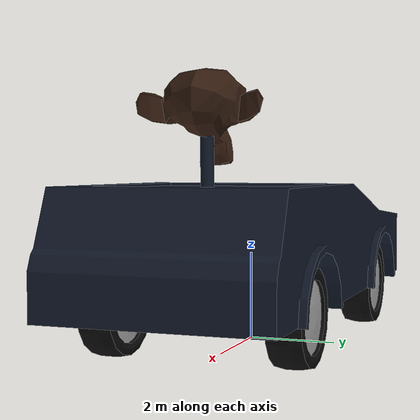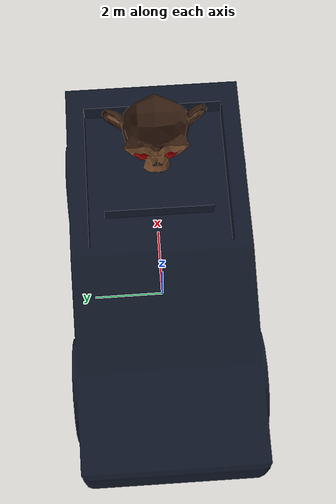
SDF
<sdf version='1.4'>
  <model name='suzanne_bot'>
    <link name='base_footprint'>
      <pose>0 0 0 0 -0 0</pose>
      <inertial>
        <pose>0 0 0 0 -0 0</pose>
        <mass>1</mass>
        <inertia>
          <ixx>0.01</ixx>
          <ixy>0</ixy>
          <ixz>0</ixz>
          <iyy>0.01</iyy>
          <iyz>0</iyz>
          <izz>0.01</izz>
        </inertia>
      </inertial>
      <velocity_decay>
        <linear>0</linear>
        <angular>0</angular>
      </velocity_decay>
    </link>
    <link name='base_link'>
      <pose>0 0 1.0607 0 -0 0</pose>
      <inertial>
        <pose>0 0 0 0 -0 0</pose>
        <mass>1000</mass>
        <inertia>
          <ixx>0.01</ixx>
          <ixy>0</ixy>
          <ixz>0</ixz>
          <iyy>0.01</iyy>
          <iyz>0</iyz>
          <izz>0.01</izz>
        </inertia>
      </inertial>
      <collision name='base_link_collision'>
        <pose>0 0 0 0 -0 0</pose>
        <geometry>
          <mesh>
            <scale>1 1 1</scale>
            <uri>model://suzanne_robot_description/meshes/chassi.dae</uri>
          </mesh>
        </geometry>
      </collision>
      <visual name='base_link_visual'>
        <pose>0 0 0 0 -0 0</pose>
        <geometry>
          <mesh>
            <scale>1 1 1</scale>
            <uri>model://suzanne_robot_description/meshes/chassi.dae</uri>
          </mesh>
        </geometry>
      </visual>
      <velocity_decay>
        <linear>0</linear>
        <angular>0</angular>
      </velocity_decay>
    </link>
    <joint name='base_footprint_base_link_joint' type='revolute'>
      <child>base_link</child>
      <parent>base_footprint</parent>
      <axis>
        <xyz>1 0 0</xyz>
        <limit>
          <lower>0</lower>
          <upper>0</upper>
          <effort>100</effort>
          <velocity>1</velocity>
        </limit>
        <dynamics/>
      </axis>
    </joint>
    <link name='Left_Back_Wheel'>
      <pose>3 -2 1.0607 0 -0 0</pose>
      <inertial>
        <pose>0 0 0 0 -0 0</pose>
        <mass>1</mass>
        <inertia>
          <ixx>0.01</ixx>
          <ixy>0</ixy>
          <ixz>0</ixz>
          <iyy>0.01</iyy>
          <iyz>0</iyz>
          <izz>0.01</izz>
        </inertia>
      </inertial>
      <collision name='Left_Back_Wheel_collision'>
        <pose>0 0 0 0 -0 0</pose>
        <geometry>
          <mesh>
            <scale>1 1 1</scale>
            <uri>model://suzanne_robot_description/meshes/wheel.dae</uri>
          </mesh>
        </geometry>
      </collision>
      <visual name='Left_Back_Wheel_visual'>
        <pose>0 0 0 0 -0 0</pose>
        <geometry>
          <mesh>
            <scale>1 1 1</scale>
            <uri>model://suzanne_robot_description/meshes/wheel.dae</uri>
          </mesh>
        </geometry>
      </visual>
      <velocity_decay>
        <linear>0</linear>
        <angular>0</angular>
      </velocity_decay>
    </link>
    <joint name='base_link_Left_Back_Wheel_joint' type='revolute'>
      <child>Left_Back_Wheel</child>
      <parent>base_link</parent>
      <axis>
        <xyz>0 1 0</xyz>
        <limit>
          <lower>-1e+16</lower>
          <upper>1e+16</upper>
        </limit>
        <dynamics/>
      </axis>
    </joint>
    <link name='Left_Front_Wheel'>
      <pose>-3 -2 1.0607 0 -0 0</pose>
      <inertial>
        <pose>0 0 0 0 -0 0</pose>
        <mass>1</mass>
        <inertia>
          <ixx>0.01</ixx>
          <ixy>0</ixy>
          <ixz>0</ixz>
          <iyy>0.01</iyy>
          <iyz>0</iyz>
          <izz>0.01</izz>
        </inertia>
      </inertial>
      <collision name='Left_Front_Wheel_collision'>
        <pose>0 0 0 0 -0 0</pose>
        <geometry>
          <mesh>
            <scale>1 1 1</scale>
            <uri>model://suzanne_robot_description/meshes/wheel.dae</uri>
          </mesh>
        </geometry>
      </collision>
      <visual name='Left_Front_Wheel_visual'>
        <pose>0 0 0 0 -0 0</pose>
        <geometry>
          <mesh>
            <scale>1 1 1</scale>
            <uri>model://suzanne_robot_description/meshes/wheel.dae</uri>
          </mesh>
        </geometry>
      </visual>
      <velocity_decay>
        <linear>0</linear>
        <angular>0</angular>
      </velocity_decay>
    </link>
    <joint name='base_link_Left_Front_Wheel_joint' type='revolute'>
      <child>Left_Front_Wheel</child>
      <parent>base_link</parent>
      <axis>
        <xyz>0 1 0</xyz>
        <limit>
          <lower>-1e+16</lower>
          <upper>1e+16</upper>
        </limit>
        <dynamics/>
      </axis>
    </joint>
    <link name='Right_Back_Wheel'>
      <pose>3 2 1.0607 0 -0 0</pose>
      <inertial>
        <pose>0 0 0 0 -0 0</pose>
        <mass>1</mass>
        <inertia>
          <ixx>0.01</ixx>
          <ixy>0</ixy>
          <ixz>0</ixz>
          <iyy>0.01</iyy>
          <iyz>0</iyz>
          <izz>0.01</izz>
        </inertia>
      </inertial>
      <collision name='Right_Back_Wheel_collision'>
        <pose>0 0 0 0 -0 0</pose>
        <geometry>
          <mesh>
            <scale>1 1 1</scale>
            <uri>model://suzanne_robot_description/meshes/wheel.dae</uri>
          </mesh>
        </geometry>
      </collision>
      <visual name='Right_Back_Wheel_visual'>
        <pose>0 0 0 0 -0 0</pose>
        <geometry>
          <mesh>
            <scale>1 1 1</scale>
            <uri>model://suzanne_robot_description/meshes/wheel.dae</uri>
          </mesh>
        </geometry>
      </visual>
      <velocity_decay>
        <linear>0</linear>
        <angular>0</angular>
      </velocity_decay>
    </link>
    <joint name='base_link_Right_Back_Wheel_joint' type='revolute'>
      <child>Right_Back_Wheel</child>
      <parent>base_link</parent>
      <axis>
        <xyz>0 1 0</xyz>
        <limit>
          <lower>-1e+16</lower>
          <upper>1e+16</upper>
        </limit>
        <dynamics/>
      </axis>
    </joint>
    <link name='Right_Front_Wheel'>
      <pose>-3 2 1.0607 0 -0 0</pose>
      <inertial>
        <pose>0 0 0 0 -0 0</pose>
        <mass>1</mass>
        <inertia>
          <ixx>0.01</ixx>
          <ixy>0</ixy>
          <ixz>0</ixz>
          <iyy>0.01</iyy>
          <iyz>0</iyz>
          <izz>0.01</izz>
        </inertia>
      </inertial>
      <collision name='Right_Front_Wheel_collision'>
        <pose>0 0 0 0 -0 0</pose>
        <geometry>
          <mesh>
            <scale>1 1 1</scale>
            <uri>model://suzanne_robot_description/meshes/wheel.dae</uri>
          </mesh>
        </geometry>
      </collision>
      <visual name='Right_Front_Wheel_visual'>
        <pose>0 0 0 0 -0 0</pose>
        <geometry>
          <mesh>
            <scale>1 1 1</scale>
            <uri>model://suzanne_robot_description/meshes/wheel.dae</uri>
          </mesh>
        </geometry>
      </visual>
      <velocity_decay>
        <linear>0</linear>
        <angular>0</angular>
      </velocity_decay>
    </link>
    <joint name='base_link_Right_Front_Wheel_joint' type='revolute'>
      <child>Right_Front_Wheel</child>
      <parent>base_link</parent>
      <axis>
        <xyz>0 1 0</xyz>
        <limit>
          <lower>-1e+16</lower>
          <upper>1e+16</upper>
        </limit>
        <dynamics/>
      </axis>
    </joint>
    <link name='head_link'>
      <pose>2.764 0 5.0357 0 -0 0</pose>
      <inertial>
        <pose>0 0 0 0 -0 0</pose>
        <mass>1</mass>
        <inertia>
          <ixx>0.01</ixx>
          <ixy>0</ixy>
          <ixz>0</ixz>
          <iyy>0.01</iyy>
          <iyz>0</iyz>
          <izz>0.01</izz>
        </inertia>
      </inertial>
      <collision name='head_link_collision'>
        <pose>0 0 0 0 -0 0</pose>
        <geometry>
          <mesh>
            <scale>1 1 1</scale>
            <uri>model://suzanne_robot_description/meshes/head.dae</uri>
          </mesh>
        </geometry>
      </collision>
      <visual name='head_link_visual'>
        <pose>0 0 0 0 -0 0</pose>
        <geometry>
          <mesh>
            <scale>1 1 1</scale>
            <uri>model://suzanne_robot_description/meshes/head.dae</uri>
          </mesh>
        </geometry>
      </visual>
      <velocity_decay>
        <linear>0</linear>
        <angular>0</angular>
      </velocity_decay>
    </link>
    <joint name='base_link_head_link_joint' type='revolute'>
      <child>head_link</child>
      <parent>base_link</parent>
      <axis>
        <xyz>0 0 1</xyz>
        <limit>
          <lower>-3.14</lower>
          <upper>3.14</upper>
          <effort>100</effort>
          <velocity>1</velocity>
        </limit>
        <dynamics/>
      </axis>
    </joint>
    <link name='Eye_left'>
      <pose>2.0602 -0.3516 5.2779 0 -0 0</pose>
      <inertial>
        <pose>0 0 0 0 -0 0</pose>
        <mass>1</mass>
        <inertia>
          <ixx>0.01</ixx>
          <ixy>0</ixy>
          <ixz>0</ixz>
          <iyy>0.01</iyy>
          <iyz>0</iyz>
          <izz>0.01</izz>
        </inertia>
      </inertial>
      <collision name='Eye_left_collision'>
        <pose>0 0 0 0 -0 0</pose>
        <geometry>
          <mesh>
            <scale>1 1 1</scale>
            <uri>model://suzanne_robot_description/meshes/eye.dae</uri>
          </mesh>
        </geometry>
      </collision>
      <visual name='Eye_left_visual'>
        <pose>0 0 0 0 -0 0</pose>
        <geometry>
          <mesh>
            <scale>1 1 1</scale>
            <uri>model://suzanne_robot_description/meshes/eye.dae</uri>
          </mesh>
        </geometry>
      </visual>
      <velocity_decay>
        <linear>0</linear>
        <angular>0</angular>
      </velocity_decay>
    </link>
    <joint name='head_link_Eye_left_joint' type='revolute'>
      <child>Eye_left</child>
      <parent>head_link</parent>
      <axis>
        <xyz>1 0 0</xyz>
        <limit>
          <lower>0</lower>
          <upper>0</upper>
          <effort>100</effort>
          <velocity>1</velocity>
        </limit>
        <dynamics/>
      </axis>
    </joint>
    <link name='Eye_right'>
      <pose>2.0602 0.3516 5.2779 0 -0 0</pose>
      <inertial>
        <pose>0 0 0 3.14 -0 0</pose>
        <mass>1</mass>
        <inertia>
          <ixx>0.01</ixx>
          <ixy>0</ixy>
          <ixz>0</ixz>
          <iyy>0.01</iyy>
          <iyz>0</iyz>
          <izz>0.01</izz>
        </inertia>
      </inertial>
      <collision name='Eye_right_collision'>
        <pose>0 0 0 0 -0 0</pose>
        <geometry>
          <mesh>
            <scale>1 1 1</scale>
            <uri>model://suzanne_robot_description/meshes/eye.dae</uri>
          </mesh>
        </geometry>
      </collision>
      <visual name='Eye_right_visual'>
        <pose>0 0 0 0 -0 0</pose>
        <geometry>
          <mesh>
            <scale>1 1 1</scale>
            <uri>model://suzanne_robot_description/meshes/eye.dae</uri>
          </mesh>
        </geometry>
      </visual>
      <velocity_decay>
        <linear>0</linear>
        <angular>0</angular>
      </velocity_decay>
    </link>
    <joint name='head_link_Eye_right_joint' type='revolute'>
      <child>Eye_right</child>
      <parent>head_link</parent>
      <axis>
        <xyz>1 0 0</xyz>
        <limit>
          <lower>0</lower>
          <upper>0</upper>
          <effort>100</effort>
          <velocity>1</velocity>
        </limit>
        <dynamics/>
      </axis>
    </joint>
  </model>
</sdf>
<sdf version='1.4'>
  <model name='suzanne_bot'>
    <link name='base_footprint'>
      <pose>0 0 0 0 -0 0</pose>
      <inertial>
        <pose>0 0 0 0 -0 0</pose>
        <mass>1</mass>
        <inertia>
          <ixx>0.01</ixx>
          <ixy>0</ixy>
          <ixz>0</ixz>
          <iyy>0.01</iyy>
          <iyz>0</iyz>
          <izz>0.01</izz>
        </inertia>
      </inertial>
      <velocity_decay>
        <linear>0</linear>
        <angular>0</angular>
      </velocity_decay>
    </link>
    <link name='base_link'>
      <pose>0 0 1.0607 0 -0 0</pose>
      <inertial>
        <pose>0 0 0 0 -0 0</pose>
        <mass>1000</mass>
        <inertia>
          <ixx>0.01</ixx>
          <ixy>0</ixy>
          <ixz>0</ixz>
          <iyy>0.01</iyy>
          <iyz>0</iyz>
          <izz>0.01</izz>
        </inertia>
      </inertial>
      <collision name='base_link_collision'>
        <pose>0 0 0 0 -0 0</pose>
        <geometry>
          <mesh>
            <scale>1 1 1</scale>
            <uri>model://suzanne_robot_description/meshes/chassi.dae</uri>
          </mesh>
        </geometry>
      </collision>
      <visual name='base_link_visual'>
        <pose>0 0 0 0 -0 0</pose>
        <geometry>
          <mesh>
            <scale>1 1 1</scale>
            <uri>model://suzanne_robot_description/meshes/chassi.dae</uri>
          </mesh>
        </geometry>
      </visual>
      <velocity_decay>
        <linear>0</linear>
        <angular>0</angular>
      </velocity_decay>
    </link>
    <joint name='base_footprint_base_link_joint' type='revolute'>
      <child>base_link</child>
      <parent>base_footprint</parent>
      <axis>
        <xyz>1 0 0</xyz>
        <limit>
          <lower>0</lower>
          <upper>0</upper>
          <effort>0</effort>
          <velocity>0</velocity>
        </limit>
        <dynamics/>
      </axis>
    </joint>
    <link name='Left_Back_Wheel'>
      <pose>3 -2 1.0607 0 -0 0</pose>
      <inertial>
        <pose>0 0 0 0 -0 0</pose>
        <mass>5</mass>
        <inertia>
          <ixx>1</ixx>
          <ixy>0</ixy>
          <ixz>0</ixz>
          <iyy>1</iyy>
          <iyz>0</iyz>
          <izz>1</izz>
        </inertia>
      </inertial>
      <collision name='Left_Back_Wheel_collision'>
        <pose>0 0 0 0 -0 0</pose>
        <geometry>
          <mesh>
            <scale>1 1 1</scale>
            <uri>model://suzanne_robot_description/meshes/wheel.dae</uri>
          </mesh>
        </geometry>
      </collision>
      <visual name='Left_Back_Wheel_visual'>
        <pose>0 0 0 0 -0 0</pose>
        <geometry>
          <mesh>
            <scale>1 1 1</scale>
            <uri>model://suzanne_robot_description/meshes/wheel.dae</uri>
          </mesh>
        </geometry>
      </visual>
      <velocity_decay>
        <linear>0</linear>
        <angular>0</angular>
      </velocity_decay>
    </link>
    <joint name='base_link_Left_Back_Wheel_joint' type='revolute'>
      <child>Left_Back_Wheel</child>
      <parent>base_link</parent>
      <axis>
        <xyz>0 1 0</xyz>
        <limit>
          <lower>-1e+16</lower>
          <upper>1e+16</upper>
        </limit>
        <dynamics/>
      </axis>
    </joint>
    <link name='Left_Front_Wheel'>
      <pose>-3 -2 1.0607 0 -0 0</pose>
      <inertial>
        <pose>0 0 0 0 -0 0</pose>
        <mass>5</mass>
        <inertia>
          <ixx>1</ixx>
          <ixy>0</ixy>
          <ixz>0</ixz>
          <iyy>1</iyy>
          <iyz>0</iyz>
          <izz>1</izz>
        </inertia>
      </inertial>
      <collision name='Left_Front_Wheel_collision'>
        <pose>0 0 0 0 -0 0</pose>
        <geometry>
          <mesh>
            <scale>1 1 1</scale>
            <uri>model://suzanne_robot_description/meshes/wheel.dae</uri>
          </mesh>
        </geometry>
      </collision>
      <visual name='Left_Front_Wheel_visual'>
        <pose>0 0 0 0 -0 0</pose>
        <geometry>
          <mesh>
            <scale>1 1 1</scale>
            <uri>model://suzanne_robot_description/meshes/wheel.dae</uri>
          </mesh>
        </geometry>
      </visual>
      <velocity_decay>
        <linear>0</linear>
        <angular>0</angular>
      </velocity_decay>
    </link>
    <joint name='base_link_Left_Front_Wheel_joint' type='revolute'>
      <child>Left_Front_Wheel</child>
      <parent>base_link</parent>
      <axis>
        <xyz>0 1 0</xyz>
        <limit>
          <lower>-1e+16</lower>
          <upper>1e+16</upper>
        </limit>
        <dynamics/>
      </axis>
    </joint>
    <link name='Right_Back_Wheel'>
      <pose>3 2 1.0607 0 -0 0</pose>
      <inertial>
        <pose>0 0 0 0 -0 0</pose>
        <mass>5</mass>
        <inertia>
          <ixx>1</ixx>
          <ixy>0</ixy>
          <ixz>0</ixz>
          <iyy>1</iyy>
          <iyz>0</iyz>
          <izz>1</izz>
        </inertia>
      </inertial>
      <collision name='Right_Back_Wheel_collision'>
        <pose>0 0 0 0 -0 0</pose>
        <geometry>
          <mesh>
            <scale>1 1 1</scale>
            <uri>model://suzanne_robot_description/meshes/wheel.dae</uri>
          </mesh>
        </geometry>
      </collision>
      <visual name='Right_Back_Wheel_visual'>
        <pose>0 0 0 0 -0 0</pose>
        <geometry>
          <mesh>
            <scale>1 1 1</scale>
            <uri>model://suzanne_robot_description/meshes/wheel.dae</uri>
          </mesh>
        </geometry>
      </visual>
      <velocity_decay>
        <linear>0</linear>
        <angular>0</angular>
      </velocity_decay>
    </link>
    <joint name='base_link_Right_Back_Wheel_joint' type='revolute'>
      <child>Right_Back_Wheel</child>
      <parent>base_link</parent>
      <axis>
        <xyz>0 1 0</xyz>
        <limit>
          <lower>-1e+16</lower>
          <upper>1e+16</upper>
        </limit>
        <dynamics/>
      </axis>
    </joint>
    <link name='Right_Front_Wheel'>
      <pose>-3 2 1.0607 0 -0 0</pose>
      <inertial>
        <pose>0 0 0 0 -0 0</pose>
        <mass>5</mass>
        <inertia>
          <ixx>1</ixx>
          <ixy>0</ixy>
          <ixz>0</ixz>
          <iyy>1</iyy>
          <iyz>0</iyz>
          <izz>1</izz>
        </inertia>
      </inertial>
      <collision name='Right_Front_Wheel_collision'>
        <pose>0 0 0 0 -0 0</pose>
        <geometry>
          <mesh>
            <scale>1 1 1</scale>
            <uri>model://suzanne_robot_description/meshes/wheel.dae</uri>
          </mesh>
        </geometry>
      </collision>
      <visual name='Right_Front_Wheel_visual'>
        <pose>0 0 0 0 -0 0</pose>
        <geometry>
          <mesh>
            <scale>1 1 1</scale>
            <uri>model://suzanne_robot_description/meshes/wheel.dae</uri>
          </mesh>
        </geometry>
      </visual>
      <velocity_decay>
        <linear>0</linear>
        <angular>0</angular>
      </velocity_decay>
    </link>
    <joint name='base_link_Right_Front_Wheel_joint' type='revolute'>
      <child>Right_Front_Wheel</child>
      <parent>base_link</parent>
      <axis>
        <xyz>0 1 0</xyz>
        <limit>
          <lower>-1e+16</lower>
          <upper>1e+16</upper>
        </limit>
        <dynamics/>
      </axis>
    </joint>
    <link name='head_link'>
      <pose>2.764 0 5.0357 0 -0 0</pose>
      <inertial>
        <pose>0 0 0 0 -0 0</pose>
        <mass>10</mass>
        <inertia>
          <ixx>0.01</ixx>
          <ixy>0</ixy>
          <ixz>0</ixz>
          <iyy>0.01</iyy>
          <iyz>0</iyz>
          <izz>0.01</izz>
        </inertia>
      </inertial>
      <collision name='head_link_collision'>
        <pose>0 0 0 0 -0 0</pose>
        <geometry>
          <mesh>
            <scale>1 1 1</scale>
            <uri>model://suzanne_robot_description/meshes/head.dae</uri>
          </mesh>
        </geometry>
      </collision>
      <visual name='head_link_visual'>
        <pose>0 0 0 0 -0 0</pose>
        <geometry>
          <mesh>
            <scale>1 1 1</scale>
            <uri>model://suzanne_robot_description/meshes/head.dae</uri>
          </mesh>
        </geometry>
      </visual>
      <velocity_decay>
        <linear>0</linear>
        <angular>0</angular>
      </velocity_decay>
    </link>
    <joint name='base_link_head_link_joint' type='revolute'>
      <child>head_link</child>
      <parent>base_link</parent>
      <axis>
        <xyz>1 0 0</xyz>
        <limit>
          <lower>0</lower>
          <upper>0</upper>
          <effort>0</effort>
          <velocity>0</velocity>
        </limit>
        <dynamics/>
      </axis>
    </joint>
    <link name='Eye_left'>
      <pose>2.0602 -0.3516 5.2779 0 -0 0</pose>
      <inertial>
        <pose>0 0 0 0 -0 0</pose>
        <mass>1</mass>
        <inertia>
          <ixx>0.01</ixx>
          <ixy>0</ixy>
          <ixz>0</ixz>
          <iyy>0.01</iyy>
          <iyz>0</iyz>
          <izz>0.01</izz>
        </inertia>
      </inertial>
      <collision name='Eye_left_collision'>
        <pose>0 0 0 0 -0 0</pose>
        <geometry>
          <mesh>
            <scale>1 1 1</scale>
            <uri>model://suzanne_robot_description/meshes/eye.dae</uri>
          </mesh>
        </geometry>
      </collision>
      <visual name='Eye_left_visual'>
        <pose>0 0 0 0 -0 0</pose>
        <geometry>
          <mesh>
            <scale>1 1 1</scale>
            <uri>model://suzanne_robot_description/meshes/eye.dae</uri>
          </mesh>
        </geometry>
      </visual>
      <velocity_decay>
        <linear>0</linear>
        <angular>0</angular>
      </velocity_decay>
    </link>
    <joint name='head_link_Eye_left_joint' type='revolute'>
      <child>Eye_left</child>
      <parent>head_link</parent>
      <axis>
        <xyz>1 0 0</xyz>
        <limit>
          <lower>0</lower>
          <upper>0</upper>
          <effort>0</effort>
          <velocity>0</velocity>
        </limit>
        <dynamics/>
      </axis>
    </joint>
    <link name='Eye_right'>
      <pose>2.0602 0.3516 5.2779 0 -0 0</pose>
      <inertial>
        <pose>0 0 0 3.14 -0 0</pose>
        <mass>1</mass>
        <inertia>
          <ixx>0.01</ixx>
          <ixy>0</ixy>
          <ixz>0</ixz>
          <iyy>0.01</iyy>
          <iyz>0</iyz>
          <izz>0.01</izz>
        </inertia>
      </inertial>
      <collision name='Eye_right_collision'>
        <pose>0 0 0 0 -0 0</pose>
        <geometry>
          <mesh>
            <scale>1 1 1</scale>
            <uri>model://suzanne_robot_description/meshes/eye.dae</uri>
          </mesh>
        </geometry>
      </collision>
      <visual name='Eye_right_visual'>
        <pose>0 0 0 0 -0 0</pose>
        <geometry>
          <mesh>
            <scale>1 1 1</scale>
            <uri>model://suzanne_robot_description/meshes/eye.dae</uri>
          </mesh>
        </geometry>
      </visual>
      <velocity_decay>
        <linear>0</linear>
        <angular>0</angular>
      </velocity_decay>
    </link>
    <joint name='head_link_Eye_right_joint' type='revolute'>
      <child>Eye_right</child>
      <parent>head_link</parent>
      <axis>
        <xyz>1 0 0</xyz>
        <limit>
          <lower>0</lower>
          <upper>0</upper>
          <effort>0</effort>
          <velocity>0</velocity>
        </limit>
        <dynamics/>
      </axis>
    </joint>
  </model>
</sdf>
<sdf version='1.4'>
  <model name='suzanne_bot'>
    <link name='base_footprint'>
      <pose>0 0 0 0 -0 0</pose>
      <inertial>
        <pose>0 0 0 0 -0 0</pose>
        <mass>1</mass>
        <inertia>
          <ixx>0.01</ixx>
          <ixy>0</ixy>
          <ixz>0</ixz>
          <iyy>0.01</iyy>
          <iyz>0</iyz>
          <izz>0.01</izz>
        </inertia>
      </inertial>
      <velocity_decay>
        <linear>0</linear>
        <angular>0</angular>
      </velocity_decay>
    </link>
    <link name='base_link'>
      <pose>0 0 1.0607 0 -0 0</pose>
      <inertial>
        <pose>0 0 0 0 -0 0</pose>
        <mass>1000</mass>
        <inertia>
          <ixx>0.01</ixx>
          <ixy>0</ixy>
          <ixz>0</ixz>
          <iyy>0.01</iyy>
          <iyz>0</iyz>
          <izz>0.01</izz>
        </inertia>
      </inertial>
      <collision name='base_link_collision'>
        <pose>0 0 0 0 -0 0</pose>
        <geometry>
          <mesh>
            <scale>1 1 1</scale>
            <uri>model://suzanne_robot_description/meshes/chassi.dae</uri>
          </mesh>
        </geometry>
      </collision>
      <visual name='base_link_visual'>
        <pose>0 0 0 0 -0 0</pose>
        <geometry>
          <mesh>
            <scale>1 1 1</scale>
            <uri>model://suzanne_robot_description/meshes/chassi.dae</uri>
          </mesh>
        </geometry>
      </visual>
      <velocity_decay>
        <linear>0</linear>
        <angular>0</angular>
      </velocity_decay>
    </link>
    <joint name='base_footprint_base_link_joint' type='revolute'>
      <child>base_link</child>
      <parent>base_footprint</parent>
      <axis>
        <xyz>1 0 0</xyz>
        <limit>
          <lower>0</lower>
          <upper>0</upper>
          <effort>0</effort>
          <velocity>0</velocity>
        </limit>
        <dynamics/>
      </axis>
    </joint>
    <link name='Left_Back_Wheel'>
      <pose>3 -2 1.0607 0 -0 0</pose>
      <inertial>
        <pose>0 0 0 0 -0 0</pose>
        <mass>5</mass>
        <inertia>
          <ixx>1</ixx>
          <ixy>0</ixy>
          <ixz>0</ixz>
          <iyy>1</iyy>
          <iyz>0</iyz>
          <izz>1</izz>
        </inertia>
      </inertial>
      <collision name='Left_Back_Wheel_collision'>
        <pose>0 0 0 0 -0 0</pose>
        <geometry>
          <mesh>
            <scale>1 1 1</scale>
            <uri>model://suzanne_robot_description/meshes/wheel.dae</uri>
          </mesh>
        </geometry>
      </collision>
      <visual name='Left_Back_Wheel_visual'>
        <pose>0 0 0 0 -0 0</pose>
        <geometry>
          <mesh>
            <scale>1 1 1</scale>
            <uri>model://suzanne_robot_description/meshes/wheel.dae</uri>
          </mesh>
        </geometry>
      </visual>
      <velocity_decay>
        <linear>0</linear>
        <angular>0</angular>
      </velocity_decay>
    </link>
    <joint name='base_link_Left_Back_Wheel_joint' type='revolute'>
      <child>Left_Back_Wheel</child>
      <parent>base_link</parent>
      <axis>
        <xyz>0 1 0</xyz>
        <limit>
          <lower>-1e+16</lower>
          <upper>1e+16</upper>
        </limit>
        <dynamics/>
      </axis>
    </joint>
    <link name='Left_Front_Wheel'>
      <pose>-3 -2 1.0607 0 -0 0</pose>
      <inertial>
        <pose>0 0 0 0 -0 0</pose>
        <mass>5</mass>
        <inertia>
          <ixx>1</ixx>
          <ixy>0</ixy>
          <ixz>0</ixz>
          <iyy>1</iyy>
          <iyz>0</iyz>
          <izz>1</izz>
        </inertia>
      </inertial>
      <collision name='Left_Front_Wheel_collision'>
        <pose>0 0 0 0 -0 0</pose>
        <geometry>
          <mesh>
            <scale>1 1 1</scale>
            <uri>model://suzanne_robot_description/meshes/wheel.dae</uri>
          </mesh>
        </geometry>
      </collision>
      <visual name='Left_Front_Wheel_visual'>
        <pose>0 0 0 0 -0 0</pose>
        <geometry>
          <mesh>
            <scale>1 1 1</scale>
            <uri>model://suzanne_robot_description/meshes/wheel.dae</uri>
          </mesh>
        </geometry>
      </visual>
      <velocity_decay>
        <linear>0</linear>
        <angular>0</angular>
      </velocity_decay>
    </link>
    <joint name='base_link_Left_Front_Wheel_joint' type='revolute'>
      <child>Left_Front_Wheel</child>
      <parent>base_link</parent>
      <axis>
        <xyz>0 1 0</xyz>
        <limit>
          <lower>-1e+16</lower>
          <upper>1e+16</upper>
        </limit>
        <dynamics/>
      </axis>
    </joint>
    <link name='Right_Back_Wheel'>
      <pose>3 2 1.0607 0 -0 0</pose>
      <inertial>
        <pose>0 0 0 0 -0 0</pose>
        <mass>5</mass>
        <inertia>
          <ixx>1</ixx>
          <ixy>0</ixy>
          <ixz>0</ixz>
          <iyy>1</iyy>
          <iyz>0</iyz>
          <izz>1</izz>
        </inertia>
      </inertial>
      <collision name='Right_Back_Wheel_collision'>
        <pose>0 0 0 0 -0 0</pose>
        <geometry>
          <mesh>
            <scale>1 1 1</scale>
            <uri>model://suzanne_robot_description/meshes/wheel.dae</uri>
          </mesh>
        </geometry>
      </collision>
      <visual name='Right_Back_Wheel_visual'>
        <pose>0 0 0 0 -0 0</pose>
        <geometry>
          <mesh>
            <scale>1 1 1</scale>
            <uri>model://suzanne_robot_description/meshes/wheel.dae</uri>
          </mesh>
        </geometry>
      </visual>
      <velocity_decay>
        <linear>0</linear>
        <angular>0</angular>
      </velocity_decay>
    </link>
    <joint name='base_link_Right_Back_Wheel_joint' type='revolute'>
      <child>Right_Back_Wheel</child>
      <parent>base_link</parent>
      <axis>
        <xyz>0 1 0</xyz>
        <limit>
          <lower>-1e+16</lower>
          <upper>1e+16</upper>
        </limit>
        <dynamics/>
      </axis>
    </joint>
    <link name='Right_Front_Wheel'>
      <pose>-3 2 1.0607 0 -0 0</pose>
      <inertial>
        <pose>0 0 0 0 -0 0</pose>
        <mass>5</mass>
        <inertia>
          <ixx>1</ixx>
          <ixy>0</ixy>
          <ixz>0</ixz>
          <iyy>1</iyy>
          <iyz>0</iyz>
          <izz>1</izz>
        </inertia>
      </inertial>
      <collision name='Right_Front_Wheel_collision'>
        <pose>0 0 0 0 -0 0</pose>
        <geometry>
          <mesh>
            <scale>1 1 1</scale>
            <uri>model://suzanne_robot_description/meshes/wheel.dae</uri>
          </mesh>
        </geometry>
      </collision>
      <visual name='Right_Front_Wheel_visual'>
        <pose>0 0 0 0 -0 0</pose>
        <geometry>
          <mesh>
            <scale>1 1 1</scale>
            <uri>model://suzanne_robot_description/meshes/wheel.dae</uri>
          </mesh>
        </geometry>
      </visual>
      <velocity_decay>
        <linear>0</linear>
        <angular>0</angular>
      </velocity_decay>
    </link>
    <joint name='base_link_Right_Front_Wheel_joint' type='revolute'>
      <child>Right_Front_Wheel</child>
      <parent>base_link</parent>
      <axis>
        <xyz>0 1 0</xyz>
        <limit>
          <lower>-1e+16</lower>
          <upper>1e+16</upper>
        </limit>
        <dynamics/>
      </axis>
    </joint>
    <link name='head_link'>
      <pose>2.764 0 5.0357 0 -0 0</pose>
      <inertial>
        <pose>0 0 0 0 -0 0</pose>
        <mass>10</mass>
        <inertia>
          <ixx>0.01</ixx>
          <ixy>0</ixy>
          <ixz>0</ixz>
          <iyy>0.01</iyy>
          <iyz>0</iyz>
          <izz>0.01</izz>
        </inertia>
      </inertial>
      <collision name='head_link_collision'>
        <pose>0 0 0 0 -0 0</pose>
        <geometry>
          <mesh>
            <scale>1 1 1</scale>
            <uri>model://suzanne_robot_description/meshes/head.dae</uri>
          </mesh>
        </geometry>
      </collision>
      <visual name='head_link_visual'>
        <pose>0 0 0 0 -0 0</pose>
        <geometry>
          <mesh>
            <scale>1 1 1</scale>
            <uri>model://suzanne_robot_description/meshes/head.dae</uri>
          </mesh>
        </geometry>
      </visual>
      <velocity_decay>
        <linear>0</linear>
        <angular>0</angular>
      </velocity_decay>
    </link>
    <joint name='base_link_head_link_joint' type='revolute'>
      <child>head_link</child>
      <parent>base_link</parent>
      <axis>
        <xyz>1 0 0</xyz>
        <limit>
          <lower>0</lower>
          <upper>0</upper>
          <effort>0</effort>
          <velocity>0</velocity>
        </limit>
        <dynamics/>
      </axis>
    </joint>
    <link name='Eye_left'>
      <pose>2.0602 -0.3516 5.2779 0 -0 0</pose>
      <inertial>
        <pose>0 0 0 0 -0 0</pose>
        <mass>1</mass>
        <inertia>
          <ixx>0.01</ixx>
          <ixy>0</ixy>
          <ixz>0</ixz>
          <iyy>0.01</iyy>
          <iyz>0</iyz>
          <izz>0.01</izz>
        </inertia>
      </inertial>
      <collision name='Eye_left_collision'>
        <pose>0 0 0 0 -0 0</pose>
        <geometry>
          <mesh>
            <scale>1 1 1</scale>
            <uri>model://suzanne_robot_description/meshes/eye.dae</uri>
          </mesh>
        </geometry>
      </collision>
      <visual name='Eye_left_visual'>
        <pose>0 0 0 0 -0 0</pose>
        <geometry>
          <mesh>
            <scale>1 1 1</scale>
            <uri>model://suzanne_robot_description/meshes/eye.dae</uri>
          </mesh>
        </geometry>
      </visual>
      <velocity_decay>
        <linear>0</linear>
        <angular>0</angular>
      </velocity_decay>
    </link>
    <joint name='head_link_Eye_left_joint' type='revolute'>
      <child>Eye_left</child>
      <parent>head_link</parent>
      <axis>
        <xyz>1 0 0</xyz>
        <limit>
          <lower>0</lower>
          <upper>0</upper>
          <effort>0</effort>
          <velocity>0</velocity>
        </limit>
        <dynamics/>
      </axis>
    </joint>
    <link name='Eye_right'>
      <pose>2.0602 0.3516 5.2779 0 -0 0</pose>
      <inertial>
        <pose>0 0 0 3.14 -0 0</pose>
        <mass>1</mass>
        <inertia>
          <ixx>0.01</ixx>
          <ixy>0</ixy>
          <ixz>0</ixz>
          <iyy>0.01</iyy>
          <iyz>0</iyz>
          <izz>0.01</izz>
        </inertia>
      </inertial>
      <collision name='Eye_right_collision'>
        <pose>0 0 0 0 -0 0</pose>
        <geometry>
          <mesh>
            <scale>1 1 1</scale>
            <uri>model://suzanne_robot_description/meshes/eye.dae</uri>
          </mesh>
        </geometry>
      </collision>
      <visual name='Eye_right_visual'>
        <pose>0 0 0 0 -0 0</pose>
        <geometry>
          <mesh>
            <scale>1 1 1</scale>
            <uri>model://suzanne_robot_description/meshes/eye.dae</uri>
          </mesh>
        </geometry>
      </visual>
      <velocity_decay>
        <linear>0</linear>
        <angular>0</angular>
      </velocity_decay>
    </link>
    <joint name='head_link_Eye_right_joint' type='revolute'>
      <child>Eye_right</child>
      <parent>head_link</parent>
      <axis>
        <xyz>1 0 0</xyz>
        <limit>
          <lower>0</lower>
          <upper>0</upper>
          <effort>0</effort>
          <velocity>0</velocity>
        </limit>
        <dynamics/>
      </axis>
    </joint>
  </model>
</sdf>
<sdf version='1.4'>
  <model name='suzanne_bot'>
    <link name='base_footprint'>
      <pose>0 0 0 0 -0 0</pose>
      <inertial>
        <pose>0 0 0 0 -0 0</pose>
        <mass>1.5</mass>
        <inertia>
          <ixx>1.5</ixx>
          <ixy>0</ixy>
          <ixz>0</ixz>
          <iyy>1.5</iyy>
          <iyz>0</iyz>
          <izz>1.5</izz>
        </inertia>
      </inertial>
      <velocity_decay>
        <linear>0</linear>
        <angular>0</angular>
      </velocity_decay>
    </link>
    <link name='base_link'>
      <pose>0 0 1.0607 0 -0 0</pose>
      <inertial>
        <pose>0 0 0 0 -0 0</pose>
        <mass>1000</mass>
        <inertia>
          <ixx>1.5</ixx>
          <ixy>0</ixy>
          <ixz>0</ixz>
          <iyy>1.5</iyy>
          <iyz>0</iyz>
          <izz>1.5</izz>
        </inertia>
      </inertial>
      <collision name='base_link_collision'>
        <pose>0 0 0 0 -0 0</pose>
        <geometry>
          <mesh>
            <scale>1 1 1</scale>
            <uri>model://suzanne_robot_description/meshes/chassi.dae</uri>
          </mesh>
        </geometry>
      </collision>
      <visual name='base_link_visual'>
        <pose>0 0 0 0 -0 0</pose>
        <geometry>
          <mesh>
            <scale>1 1 1</scale>
            <uri>model://suzanne_robot_description/meshes/chassi.dae</uri>
          </mesh>
        </geometry>
      </visual>
      <velocity_decay>
        <linear>0</linear>
        <angular>0</angular>
      </velocity_decay>
    </link>
    <joint name='base_footprint_base_link_joint' type='revolute'>
      <child>base_link</child>
      <parent>base_footprint</parent>
      <axis>
        <xyz>1 0 0</xyz>
        <limit>
          <lower>0</lower>
          <upper>0</upper>
          <effort>0</effort>
          <velocity>0</velocity>
        </limit>
        <dynamics/>
      </axis>
    </joint>
    <link name='Left_Back_Wheel'>
      <pose>3 -2 1.0607 0 -0 0</pose>
      <inertial>
        <pose>0 0 0 0 -0 0</pose>
        <mass>5</mass>
        <inertia>
          <ixx>1.5</ixx>
          <ixy>0</ixy>
          <ixz>0</ixz>
          <iyy>1.5</iyy>
          <iyz>0</iyz>
          <izz>1.5</izz>
        </inertia>
      </inertial>
      <collision name='Left_Back_Wheel_collision'>
        <pose>0 0 0 0 -0 0</pose>
        <geometry>
          <mesh>
            <scale>1 1 1</scale>
            <uri>model://suzanne_robot_description/meshes/wheel.dae</uri>
          </mesh>
        </geometry>
      </collision>
      <visual name='Left_Back_Wheel_visual'>
        <pose>0 0 0 0 -0 0</pose>
        <geometry>
          <mesh>
            <scale>1 1 1</scale>
            <uri>model://suzanne_robot_description/meshes/wheel.dae</uri>
          </mesh>
        </geometry>
      </visual>
      <velocity_decay>
        <linear>0</linear>
        <angular>0</angular>
      </velocity_decay>
    </link>
    <joint name='base_link_Left_Back_Wheel_joint' type='revolute'>
      <child>Left_Back_Wheel</child>
      <parent>base_link</parent>
      <axis>
        <xyz>0 1 0</xyz>
        <limit>
          <lower>-1e+16</lower>
          <upper>1e+16</upper>
        </limit>
        <dynamics/>
      </axis>
    </joint>
    <link name='Left_Front_Wheel'>
      <pose>-3 -2 1.0607 0 -0 0</pose>
      <inertial>
        <pose>0 0 0 0 -0 0</pose>
        <mass>5</mass>
        <inertia>
          <ixx>1.5</ixx>
          <ixy>0</ixy>
          <ixz>0</ixz>
          <iyy>1.5</iyy>
          <iyz>0</iyz>
          <izz>1.5</izz>
        </inertia>
      </inertial>
      <collision name='Left_Front_Wheel_collision'>
        <pose>0 0 0 0 -0 0</pose>
        <geometry>
          <mesh>
            <scale>1 1 1</scale>
            <uri>model://suzanne_robot_description/meshes/wheel.dae</uri>
          </mesh>
        </geometry>
      </collision>
      <visual name='Left_Front_Wheel_visual'>
        <pose>0 0 0 0 -0 0</pose>
        <geometry>
          <mesh>
            <scale>1 1 1</scale>
            <uri>model://suzanne_robot_description/meshes/wheel.dae</uri>
          </mesh>
        </geometry>
      </visual>
      <velocity_decay>
        <linear>0</linear>
        <angular>0</angular>
      </velocity_decay>
    </link>
    <joint name='base_link_Left_Front_Wheel_joint' type='revolute'>
      <child>Left_Front_Wheel</child>
      <parent>base_link</parent>
      <axis>
        <xyz>0 1 0</xyz>
        <limit>
          <lower>-1e+16</lower>
          <upper>1e+16</upper>
        </limit>
        <dynamics/>
      </axis>
    </joint>
    <link name='Right_Back_Wheel'>
      <pose>3 2 1.0607 0 -0 0</pose>
      <inertial>
        <pose>0 0 0 0 -0 0</pose>
        <mass>5</mass>
        <inertia>
          <ixx>1.5</ixx>
          <ixy>0</ixy>
          <ixz>0</ixz>
          <iyy>1.5</iyy>
          <iyz>0</iyz>
          <izz>1.5</izz>
        </inertia>
      </inertial>
      <collision name='Right_Back_Wheel_collision'>
        <pose>0 0 0 0 -0 0</pose>
        <geometry>
          <mesh>
            <scale>1 1 1</scale>
            <uri>model://suzanne_robot_description/meshes/wheel.dae</uri>
          </mesh>
        </geometry>
      </collision>
      <visual name='Right_Back_Wheel_visual'>
        <pose>0 0 0 0 -0 0</pose>
        <geometry>
          <mesh>
            <scale>1 1 1</scale>
            <uri>model://suzanne_robot_description/meshes/wheel.dae</uri>
          </mesh>
        </geometry>
      </visual>
      <velocity_decay>
        <linear>0</linear>
        <angular>0</angular>
      </velocity_decay>
    </link>
    <joint name='base_link_Right_Back_Wheel_joint' type='revolute'>
      <child>Right_Back_Wheel</child>
      <parent>base_link</parent>
      <axis>
        <xyz>0 1 0</xyz>
        <limit>
          <lower>-1e+16</lower>
          <upper>1e+16</upper>
        </limit>
        <dynamics/>
      </axis>
    </joint>
    <link name='Right_Front_Wheel'>
      <pose>-3 2 1.0607 0 -0 0</pose>
      <inertial>
        <pose>0 0 0 0 -0 0</pose>
        <mass>5</mass>
        <inertia>
          <ixx>1.5</ixx>
          <ixy>0</ixy>
          <ixz>0</ixz>
          <iyy>1.5</iyy>
          <iyz>0</iyz>
          <izz>1.5</izz>
        </inertia>
      </inertial>
      <collision name='Right_Front_Wheel_collision'>
        <pose>0 0 0 0 -0 0</pose>
        <geometry>
          <mesh>
            <scale>1 1 1</scale>
            <uri>model://suzanne_robot_description/meshes/wheel.dae</uri>
          </mesh>
        </geometry>
      </collision>
      <visual name='Right_Front_Wheel_visual'>
        <pose>0 0 0 0 -0 0</pose>
        <geometry>
          <mesh>
            <scale>1 1 1</scale>
            <uri>model://suzanne_robot_description/meshes/wheel.dae</uri>
          </mesh>
        </geometry>
      </visual>
      <velocity_decay>
        <linear>0</linear>
        <angular>0</angular>
      </velocity_decay>
    </link>
    <joint name='base_link_Right_Front_Wheel_joint' type='revolute'>
      <child>Right_Front_Wheel</child>
      <parent>base_link</parent>
      <axis>
        <xyz>0 1 0</xyz>
        <limit>
          <lower>-1e+16</lower>
          <upper>1e+16</upper>
        </limit>
        <dynamics/>
      </axis>
    </joint>
    <link name='head_link'>
      <pose>2.764 0 5.0357 0 -0 0</pose>
      <inertial>
        <pose>0 0 0 0 -0 0</pose>
        <mass>10</mass>
        <inertia>
          <ixx>1.5</ixx>
          <ixy>0</ixy>
          <ixz>0</ixz>
          <iyy>1.5</iyy>
          <iyz>0</iyz>
          <izz>1.5</izz>
        </inertia>
      </inertial>
      <collision name='head_link_collision'>
        <pose>0 0 0 0 -0 0</pose>
        <geometry>
          <mesh>
            <scale>1 1 1</scale>
            <uri>model://suzanne_robot_description/meshes/head.dae</uri>
          </mesh>
        </geometry>
      </collision>
      <visual name='head_link_visual'>
        <pose>0 0 0 0 -0 0</pose>
        <geometry>
          <mesh>
            <scale>1 1 1</scale>
            <uri>model://suzanne_robot_description/meshes/head.dae</uri>
          </mesh>
        </geometry>
      </visual>
      <velocity_decay>
        <linear>0</linear>
        <angular>0</angular>
      </velocity_decay>
    </link>
    <joint name='base_link_head_link_joint' type='revolute'>
      <child>head_link</child>
      <parent>base_link</parent>
      <axis>
        <xyz>1 0 0</xyz>
        <limit>
          <lower>0</lower>
          <upper>0</upper>
          <effort>0</effort>
          <velocity>0</velocity>
        </limit>
        <dynamics/>
      </axis>
    </joint>
    <link name='Eye_left'>
      <pose>2.0602 -0.3516 5.2779 0 -0 0</pose>
      <inertial>
        <pose>0 0 0 0 -0 0</pose>
        <mass>1.5</mass>
        <inertia>
          <ixx>1.5</ixx>
          <ixy>0</ixy>
          <ixz>0</ixz>
          <iyy>1.5</iyy>
          <iyz>0</iyz>
          <izz>1.5</izz>
        </inertia>
      </inertial>
      <collision name='Eye_left_collision'>
        <pose>0 0 0 0 -0 0</pose>
        <geometry>
          <mesh>
            <scale>1 1 1</scale>
            <uri>model://suzanne_robot_description/meshes/eye.dae</uri>
          </mesh>
        </geometry>
      </collision>
      <visual name='Eye_left_visual'>
        <pose>0 0 0 0 -0 0</pose>
        <geometry>
          <mesh>
            <scale>1 1 1</scale>
            <uri>model://suzanne_robot_description/meshes/eye.dae</uri>
          </mesh>
        </geometry>
      </visual>
      <velocity_decay>
        <linear>0</linear>
        <angular>0</angular>
      </velocity_decay>
    </link>
    <joint name='head_link_Eye_left_joint' type='revolute'>
      <child>Eye_left</child>
      <parent>head_link</parent>
      <axis>
        <xyz>1 0 0</xyz>
        <limit>
          <lower>0</lower>
          <upper>0</upper>
          <effort>0</effort>
          <velocity>0</velocity>
        </limit>
        <dynamics/>
      </axis>
    </joint>
    <link name='Eye_right'>
      <pose>2.0602 0.3516 5.2779 0 -0 0</pose>
      <inertial>
        <pose>0 0 0 3.14 -0 0</pose>
        <mass>1.5</mass>
        <inertia>
          <ixx>1.5</ixx>
          <ixy>0</ixy>
          <ixz>0</ixz>
          <iyy>1.5</iyy>
          <iyz>0</iyz>
          <izz>1.5</izz>
        </inertia>
      </inertial>
      <collision name='Eye_right_collision'>
        <pose>0 0 0 0 -0 0</pose>
        <geometry>
          <mesh>
            <scale>1 1 1</scale>
            <uri>model://suzanne_robot_description/meshes/eye.dae</uri>
          </mesh>
        </geometry>
      </collision>
      <visual name='Eye_right_visual'>
        <pose>0 0 0 0 -0 0</pose>
        <geometry>
          <mesh>
            <scale>1 1 1</scale>
            <uri>model://suzanne_robot_description/meshes/eye.dae</uri>
          </mesh>
        </geometry>
      </visual>
      <velocity_decay>
        <linear>0</linear>
        <angular>0</angular>
      </velocity_decay>
    </link>
    <joint name='head_link_Eye_right_joint' type='revolute'>
      <child>Eye_right</child>
      <parent>head_link</parent>
      <axis>
        <xyz>1 0 0</xyz>
        <limit>
          <lower>0</lower>
          <upper>0</upper>
          <effort>0</effort>
          <velocity>0</velocity>
        </limit>
        <dynamics/>
      </axis>
    </joint>
  </model>
</sdf>
